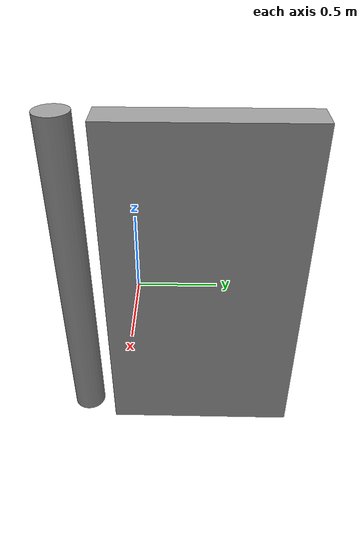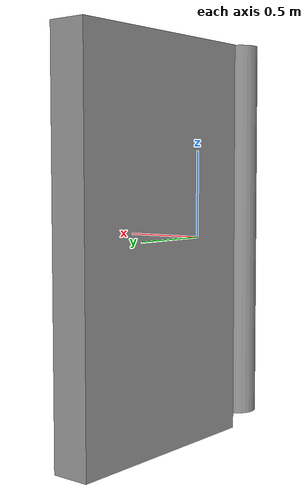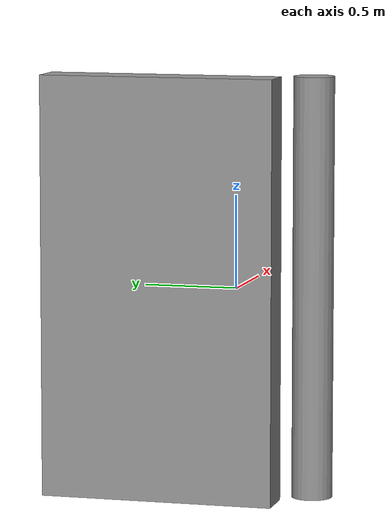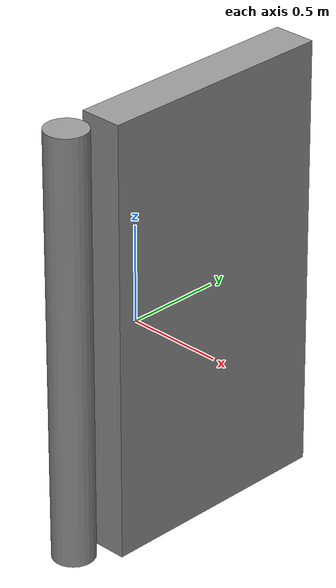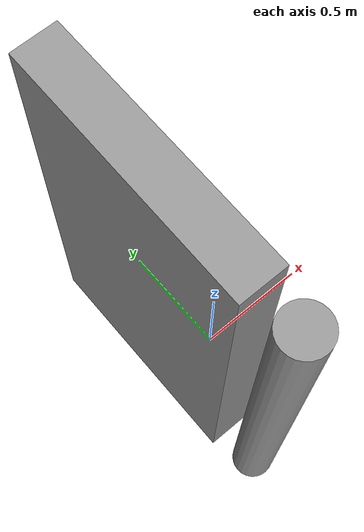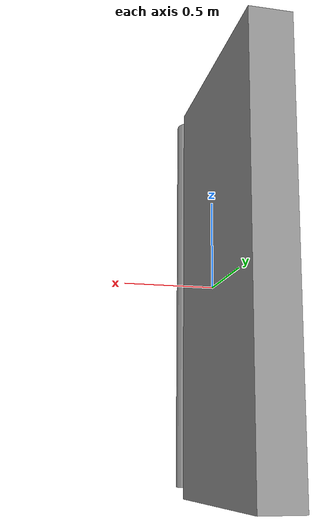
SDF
<?xml version='1.0'?>
<sdf version='1.6'>
  <model name='door1'>
    <link name='link_0'>
      <inertial>
        <mass>0.105173</mass>
        <inertia>
          <ixx>0.0445357</ixx>
          <ixy>0</ixy>
          <ixz>0</ixz>
          <iyy>0.0445357</iyy>
          <iyz>0</iyz>
          <izz>0.0006158</izz>
        </inertia>
        <pose frame=''>0 0 0 0 -0 0</pose>
      </inertial>
      <pose frame=''>-0.003106 -0.420257 0.017815 0 -0 0</pose>
      <gravity>0</gravity>
      <self_collide>0</self_collide>
      <kinematic>0</kinematic>
      <enable_wind>0</enable_wind>
      <visual name='visual'>
        <pose frame=''>0 0 0 0 -0 0</pose>
        <geometry>
          <cylinder>
            <radius>0.108213</radius>
            <length>2.24639</length>
          </cylinder>
        </geometry>
        <material>
          <lighting>1</lighting>
          <script>
            <uri>file://media/materials/scripts/gazebo.material</uri>
            <name>Gazebo/Grey</name>
          </script>
          <shader type='pixel'>
            <normal_map>__default__</normal_map>
          </shader>
          <emissive>0 0 0 1</emissive>
        </material>
        <transparency>0</transparency>
        <cast_shadows>1</cast_shadows>
      </visual>
      <collision name='collision'>
        <laser_retro>0</laser_retro>
        <max_contacts>10</max_contacts>
        <pose frame=''>0 0 0 0 -0 0</pose>
        <geometry>
          <cylinder>
            <radius>0.108213</radius>
            <length>2.24639</length>
          </cylinder>
        </geometry>
        <surface>
          <friction>
            <ode>
              <mu>1</mu>
              <mu2>1</mu2>
              <fdir1>0 0 0</fdir1>
              <slip1>0</slip1>
              <slip2>0</slip2>
            </ode>
            <torsional>
              <coefficient>1</coefficient>
              <patch_radius>0</patch_radius>
              <surface_radius>0</surface_radius>
              <use_patch_radius>1</use_patch_radius>
              <ode>
                <slip>0</slip>
              </ode>
            </torsional>
          </friction>
          <bounce>
            <restitution_coefficient>0</restitution_coefficient>
            <threshold>1e+06</threshold>
          </bounce>
          <contact>
            <collide_without_contact>0</collide_without_contact>
            <collide_without_contact_bitmask>1</collide_without_contact_bitmask>
            <collide_bitmask>1</collide_bitmask>
            <ode>
              <soft_cfm>0</soft_cfm>
              <soft_erp>0.2</soft_erp>
              <kp>1e+13</kp>
              <kd>1</kd>
              <max_vel>0.01</max_vel>
              <min_depth>0</min_depth>
            </ode>
            <bullet>
              <split_impulse>1</split_impulse>
              <split_impulse_penetration_threshold>-0.01</split_impulse_penetration_threshold>
              <soft_cfm>0</soft_cfm>
              <soft_erp>0.2</soft_erp>
              <kp>1e+13</kp>
              <kd>1</kd>
            </bullet>
          </contact>
        </surface>
      </collision>
    </link>
    <link name='link_1'>
      <inertial>
        <mass>0.651262</mass>
        <inertia>
          <ixx>0.371712</ixx>
          <ixy>0</ixy>
          <ixz>0</ixz>
          <iyy>0.286323</iyy>
          <iyz>0</iyz>
          <izz>0.0908218</izz>
        </inertia>
        <pose frame=''>0 0 0 0 -0 0</pose>
      </inertial>
      <pose frame=''>0.003106 0.420257 -0.01781 0 -0 0</pose>
      <visual name='visual'>
        <pose frame=''>0 0 0 0 -0 0</pose>
        <geometry>
          <box>
            <size>0.223723 1.27413 2.28597</size>
          </box>
        </geometry>
        <material>
          <lighting>1</lighting>
          <script>
            <uri>file://media/materials/scripts/gazebo.material</uri>
            <name>Gazebo/Grey</name>
          </script>
          <shader type='pixel'/>
          <emissive>0 0 0 1</emissive>
        </material>
        <transparency>0</transparency>
        <cast_shadows>1</cast_shadows>
      </visual>
      <collision name='collision'>
        <laser_retro>0</laser_retro>
        <max_contacts>10</max_contacts>
        <pose frame=''>0 0 0 0 -0 0</pose>
        <geometry>
          <box>
            <size>0.223723 1.27413 2.28597</size>
          </box>
        </geometry>
        <surface>
          <friction>
            <ode>
              <mu>1</mu>
              <mu2>1</mu2>
              <fdir1>0 0 0</fdir1>
              <slip1>0</slip1>
              <slip2>0</slip2>
            </ode>
            <torsional>
              <coefficient>1</coefficient>
              <patch_radius>0</patch_radius>
              <surface_radius>0</surface_radius>
              <use_patch_radius>1</use_patch_radius>
              <ode>
                <slip>0</slip>
              </ode>
            </torsional>
          </friction>
          <bounce>
            <restitution_coefficient>0</restitution_coefficient>
            <threshold>1e+06</threshold>
          </bounce>
          <contact>
            <collide_without_contact>0</collide_without_contact>
            <collide_without_contact_bitmask>1</collide_without_contact_bitmask>
            <collide_bitmask>1</collide_bitmask>
            <ode>
              <soft_cfm>0</soft_cfm>
              <soft_erp>0.2</soft_erp>
              <kp>1e+13</kp>
              <kd>1</kd>
              <max_vel>0.01</max_vel>
              <min_depth>0</min_depth>
            </ode>
            <bullet>
              <split_impulse>1</split_impulse>
              <split_impulse_penetration_threshold>-0.01</split_impulse_penetration_threshold>
              <soft_cfm>0</soft_cfm>
              <soft_erp>0.2</soft_erp>
              <kp>1e+13</kp>
              <kd>1</kd>
            </bullet>
          </contact>
        </surface>
      </collision>
    </link>
    <joint name='link_0_JOINT_0' type='revolute'>
      <parent>link_0</parent>
      <child>link_1</child>
      <pose frame=''>0 0 0 0 -0 0</pose>
      <axis>
        <xyz>0 0 1</xyz>
        <use_parent_model_frame>0</use_parent_model_frame>
        <limit>
          <lower>-1.79769e+308</lower>
          <upper>1.79769e+308</upper>
          <effort>-1</effort>
          <velocity>-1</velocity>
        </limit>
        <dynamics>
          <spring_reference>0</spring_reference>
          <spring_stiffness>0</spring_stiffness>
          <damping>0</damping>
        </dynamics>
      </axis>
      <physics>
        <ode>
          <limit>
            <cfm>0</cfm>
            <erp>0.2</erp>
          </limit>
          <suspension>
            <cfm>0</cfm>
            <erp>0.2</erp>
          </suspension>
        </ode>
      </physics>
    </joint>
<link name="world"/>
<joint name='attachToWorld' type='fixed'>
      <parent>world</parent>
      <child>link_0</child>
    </joint>

    <static>0</static>
    <allow_auto_disable>1</allow_auto_disable>
  </model>
</sdf>
